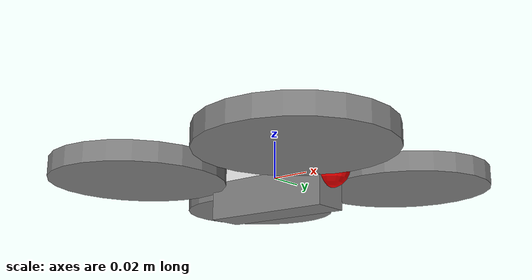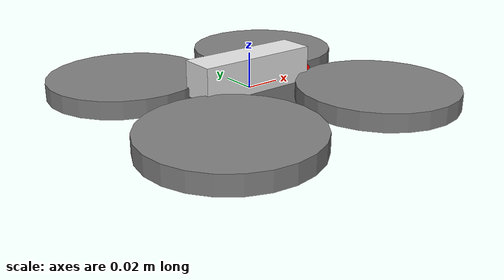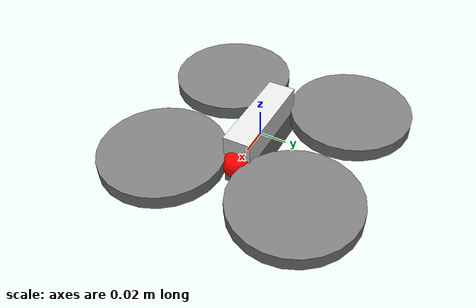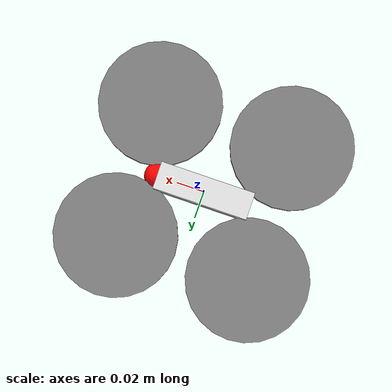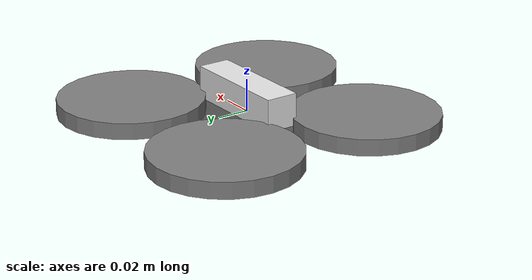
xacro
<?xml version="1.0"?>

<!-- Body coordinates are: x forward, y left, z up; rotation is: roll right, pitch forward, yaw left -->
<!-- See http://www.ros.org/reps/rep-0103.html -->

<robot name="tello" xmlns:xacro="http://www.ros.org/wiki/xacro">
    <xacro:arg name="namespace" default=""/>

    <!-- Materials -->
    <material name="gray">
        <color rgba="0.5 0.5 0.5 1.0"/>
    </material>
    <material name="white">
        <color rgba="0.9 0.9 0.9 1.0"/>
    </material>
    <material name="red">
        <color rgba="1.0 0 0 1.0"/>
    </material>
    <!-- TODO add Gazebo color information -->

    <!-- Base link -->
    <link name="base_link$(arg namespace)">
        <visual>
            <origin xyz="0 0 0.01"/>
            <geometry>
                <box size="0.07 0.02 0.02"/>
            </geometry>
            <material name="white"/>
        </visual>
        <visual>
            <origin xyz="0 0 -0.01"/>
            <geometry>
                <box size="0.07 0.02 0.02"/>
            </geometry>
            <material name="gray"/>
        </visual>
        <visual>
            <origin xyz="0.05 -0.05 0"/>
            <geometry>
                <cylinder length="0.01" radius="0.045"/>
            </geometry>
            <material name="gray"/>
        </visual>
        <visual>
            <origin xyz="-0.05 0.05 0"/>
            <geometry>
                <cylinder length="0.01" radius="0.045"/>
            </geometry>
            <material name="gray"/>
        </visual>
        <visual>
            <origin xyz="-0.05 -0.05 0"/>
            <geometry>
                <cylinder length="0.01" radius="0.045"/>
            </geometry>
            <material name="gray"/>
        </visual>
        <visual>
            <origin xyz="0.05 0.05 0"/>
            <geometry>
                <cylinder length="0.01" radius="0.045"/>
            </geometry>
            <material name="gray"/>
        </visual>
        <inertial>
            <mass value="0.1"/>
            <!-- Tensor for solid cuboid 18cm x 18cm x 5cm high -->
            <inertia ixx="0.000290833" ixy="0" ixz="0" iyy="0.00054" iyz="0" izz="0.000290833"/>
        </inertial>
        <collision name="collision">
            <geometry>
                <box size="0.18 0.18 0.05"/>
            </geometry>
        </collision>
    </link>

    <!-- Camera link -->
    <link name="camera_link$(arg namespace)">
        <visual>
            <origin xyz="0 0 0"/>
            <geometry>
                <sphere radius="0.01"/>
            </geometry>
            <material name="red"/>
        </visual>
        <collision>
            <geometry>
                <sphere radius="0.01"/>
            </geometry>
        </collision>
        <inertial>
            <mass value="1e-5"/>
            <inertia ixx="1e-6" ixy="0" ixz="0" iyy="1e-6" iyz="0" izz="1e-6"/>
        </inertial>
    </link>

    <!-- Fixed joint -->
    <joint name="camera_joint$(arg namespace)" type="fixed">
        <origin xyz="0.035 0 0" rpy="0 0 0"/>  <!-- TODO fix origin -->
        <parent link="base_link$(arg namespace)"/>
        <child link="camera_link$(arg namespace)"/>
    </joint>

    <!-- Tello plugin for Gazebo -->
    <gazebo>
        <plugin name="TelloPlugin" filename="libTelloPlugin.so">
            <namespace>$(arg namespace)</namespace>
            <parameter name="use_sim_time" type="bool">1</parameter>
            <link_name>base_link$(arg namespace)</link_name>
            <center_of_mass>0 0 0</center_of_mass>
        </plugin>
    </gazebo>

    <!-- Camera plugin for Gazebo -->
    <!-- TODO use Tello camera specs -->
    <!-- TODO add another joint and rotate the camera into place -->
    <gazebo reference="camera_link$(arg namespace)">
        <sensor type="camera" name="$(arg namespace)">
            <update_rate>30.0</update_rate>
            <camera name="head">  <!-- TODO does this name do anything? -->
                <horizontal_fov>0.96</horizontal_fov>
                <image>
                    <width>960</width>
                    <height>720</height>
                    <format>R8G8B8</format>
                </image>
                <clip>
                    <near>0.1</near>
                    <far>300</far>
                </clip>
                <noise>
                    <type>gaussian</type>
                    <mean>0.0</mean>
                    <stddev>0.007</stddev>
                </noise>
            </camera>
            <plugin name="camera_controller$(arg namespace)" filename="libgazebo_ros_camera.so">
                <ros>
                  <namespace>$(arg namespace)</namespace>
                  <remapping>image_raw:=custom_img</remapping>
                  <remapping>camera_info:=custom_info</remapping>
                </ros>

                <alwaysOn>true</alwaysOn>
                <updateRate>0.0</updateRate>
                <camera_name>camera_front</camera_name>
                <image_topic_name>image_raw_test</image_topic_name>
                <camera_info_topic_name>camera_info_test</camera_info_topic_name>
                <frameName>camera_link$(arg namespace)</frameName>
                <hackBaseline>0.07</hackBaseline>
                <distortionK1>0.0</distortionK1>
                <distortionK2>0.0</distortionK2>
                <distortionK3>0.0</distortionK3>
                <distortionT1>0.0</distortionT1>
                <distortionT2>0.0</distortionT2>
            </plugin>
        </sensor>
    </gazebo>

        <!-- Add GPS plugin for Gazebo -->
    <gazebo reference="base_link$(arg namespace)">
        <plugin name="p3d_base_controller" filename="libgazebo_ros_p3d.so">
            <ros>
              <!-- Add namespace and remap the default topic -->
              <namespace>$(arg namespace)</namespace>
              <remapping>odom:=pose</remapping>
            </ros>

        <always_on>true</always_on>
        <body_name>base_link$(arg namespace)</body_name>
        <frame_name>world</frame_name> <!-- world ? map ?-->
        <update_rate>10.0</update_rate>
        <xyz_offset>0 0 0</xyz_offset>
        <rpy_offset>0 0 0</rpy_offset>
        <gaussian_noise>0.01</gaussian_noise>
        <odometry_source>1</odometry_source> <!-- 1 : Ground truth -->
        </plugin>
    </gazebo>

</robot>
